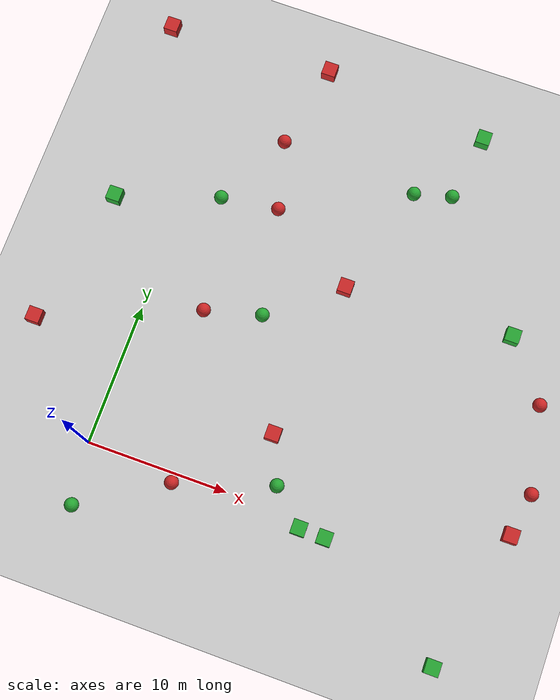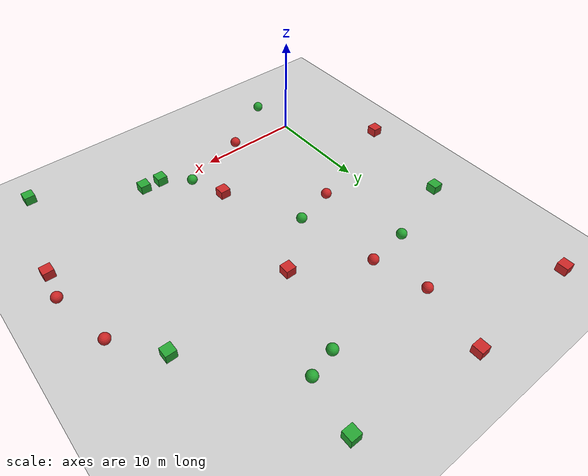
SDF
<sdf version="1.6">
 <world name="default">
  <light name="sun" type="directional">
   <pose>0 0 10 0 -0 0</pose>
   <diffuse>0.8 0.8 0.8 1</diffuse>
   <specular>0.1 0.1 0.1 1</specular>
   <attenuation>
    <range>1000</range>
    <constant>0.9</constant>
    <linear>0.01</linear>
    <quadratic>0.001</quadratic>
   </attenuation>
   <direction>-0.5 0.5 -1</direction>
  </light>
  <model name="ground_plane">
   <static>1</static>
   <link name="link">
    <collision name="collision">
     <geometry><plane><normal>0 0 1</normal><size>100 100</size></plane></geometry>
     <surface><friction><ode><mu>100</mu><mu2>50</mu2></ode></friction></surface>
    </collision>
    <visual name="visual">
     <cast_shadows>0</cast_shadows>
     <geometry><plane><normal>0 0 1</normal><size>100 100</size></plane></geometry>
     <material>
      <script><uri>file://media/materials/scripts/gazebo.material</uri><name>Gazebo/Grey</name></script>
     </material>
    </visual>
   </link>
  </model>
  <model name="unit_box_red_6">
   <pose>12.8664238449 16.1203100081 0.329741 0 -0 0</pose>
   <link name="link">
    <inertial>
     <mass>1</mass>
     <inertia>
      <ixx>0.166667</ixx>
      <ixy>0</ixy>
      <ixz>0</ixz>
      <iyy>0.166667</iyy>
      <iyz>0</iyz>
      <izz>0.166667</izz>
     </inertia>
    </inertial>
    <collision name="collision"><geometry><box><size>1 1 0.999999</size></box></geometry></collision>
    <visual name="visual">
     <geometry><box><size>1 1 0.999999</size></box></geometry>
     <material>
      <script><name>Gazebo/Red</name><uri>file://media/materials/scripts/gazebo.material</uri></script>
     </material>
    </visual>
   </link>
  </model>
  <model name="unit_box_red_5">
   <pose>28.7965384774 3.71239303723 0.329741 0 -0 0</pose>
   <link name="link">
    <inertial>
     <mass>1</mass>
     <inertia>
      <ixx>0.166667</ixx>
      <ixy>0</ixy>
      <ixz>0</ixz>
      <iyy>0.166667</iyy>
      <iyz>0</iyz>
      <izz>0.166667</izz>
     </inertia>
    </inertial>
    <collision name="collision"><geometry><box><size>1 1 0.999999</size></box></geometry></collision>
    <visual name="visual">
     <geometry><box><size>1 1 0.999999</size></box></geometry>
     <material>
      <script><name>Gazebo/Red</name><uri>file://media/materials/scripts/gazebo.material</uri></script>
     </material>
    </visual>
   </link>
  </model>
  <model name="unit_box_red_4">
   <pose>-6.70932779506 6.91007102334 0.329741 0 -0 0</pose>
   <link name="link">
    <inertial>
     <mass>1</mass>
     <inertia>
      <ixx>0.166667</ixx>
      <ixy>0</ixy>
      <ixz>0</ixz>
      <iyy>0.166667</iyy>
      <iyz>0</iyz>
      <izz>0.166667</izz>
     </inertia>
    </inertial>
    <collision name="collision"><geometry><box><size>1 1 0.999999</size></box></geometry></collision>
    <visual name="visual">
     <geometry><box><size>1 1 0.999999</size></box></geometry>
     <material>
      <script><name>Gazebo/Red</name><uri>file://media/materials/scripts/gazebo.material</uri></script>
     </material>
    </visual>
   </link>
  </model>
  <model name="unit_box_red_3">
   <pose>-5.55421412337 30.5239139961 0.329741 0 -0 0</pose>
   <link name="link">
    <inertial>
     <mass>1</mass>
     <inertia>
      <ixx>0.166667</ixx>
      <ixy>0</ixy>
      <ixz>0</ixz>
      <iyy>0.166667</iyy>
      <iyz>0</iyz>
      <izz>0.166667</izz>
     </inertia>
    </inertial>
    <collision name="collision"><geometry><box><size>1 1 0.999999</size></box></geometry></collision>
    <visual name="visual">
     <geometry><box><size>1 1 0.999999</size></box></geometry>
     <material>
      <script><name>Gazebo/Red</name><uri>file://media/materials/scripts/gazebo.material</uri></script>
     </material>
    </visual>
   </link>
  </model>
  <model name="unit_box_red_2">
   <pose>11.6356720455 4.7605083428 0.329741 0 -0 0</pose>
   <link name="link">
    <inertial>
     <mass>1</mass>
     <inertia>
      <ixx>0.166667</ixx>
      <ixy>0</ixy>
      <ixz>0</ixz>
      <iyy>0.166667</iyy>
      <iyz>0</iyz>
      <izz>0.166667</izz>
     </inertia>
    </inertial>
    <collision name="collision"><geometry><box><size>1 1 0.999999</size></box></geometry></collision>
    <visual name="visual">
     <geometry><box><size>1 1 0.999999</size></box></geometry>
     <material>
      <script><name>Gazebo/Red</name><uri>file://media/materials/scripts/gazebo.material</uri></script>
     </material>
    </visual>
   </link>
  </model>
  <model name="unit_box_red_1">
   <pose>6.46228861055 31.0765036563 0.329741 0 -0 0</pose>
   <link name="link">
    <inertial>
     <mass>1</mass>
     <inertia>
      <ixx>0.166667</ixx>
      <ixy>0</ixy>
      <ixz>0</ixz>
      <iyy>0.166667</iyy>
      <iyz>0</iyz>
      <izz>0.166667</izz>
     </inertia>
    </inertial>
    <collision name="collision"><geometry><box><size>1 1 0.999999</size></box></geometry></collision>
    <visual name="visual">
     <geometry><box><size>1 1 0.999999</size></box></geometry>
     <material>
      <script><name>Gazebo/Red</name><uri>file://media/materials/scripts/gazebo.material</uri></script>
     </material>
    </visual>
   </link>
  </model>
  <model name="unit_sphere_red_6">
   <pose>6.51791986289 19.8933931365 0.5 0 -0 0</pose>
   <link name="link">
    <inertial>
     <mass>1</mass>
     <inertia><ixx>0.1</ixx><ixy>0</ixy><ixz>0</ixz><iyy>0.1</iyy><iyz>0</iyz><izz>0.1</izz></inertia>
    </inertial>
    <collision name="collision"><geometry><sphere><radius>0.5</radius></sphere></geometry></collision>
    <visual name="visual">
     <geometry><sphere><radius>0.5</radius></sphere></geometry>
     <material>
      <script><name>Gazebo/Red</name><uri>file://media/materials/scripts/gazebo.material</uri></script>
     </material>
    </visual>
   </link>
  </model>
  <model name="unit_sphere_red_5">
   <pose>28.0282065107 12.7329346066 0.5 0 -0 0</pose>
   <link name="link">
    <inertial>
     <mass>1</mass>
     <inertia><ixx>0.1</ixx><ixy>0</ixy><ixz>0</ixz><iyy>0.1</iyy><iyz>0</iyz><izz>0.1</izz></inertia>
    </inertial>
    <collision name="collision"><geometry><sphere><radius>0.5</radius></sphere></geometry></collision>
    <visual name="visual">
     <geometry><sphere><radius>0.5</radius></sphere></geometry>
     <material>
      <script><name>Gazebo/Red</name><uri>file://media/materials/scripts/gazebo.material</uri></script>
     </material>
    </visual>
   </link>
  </model>
  <model name="unit_sphere_red_4">
   <pose>29.2761881445 6.76373887764 0.5 0 -0 0</pose>
   <link name="link">
    <inertial>
     <mass>1</mass>
     <inertia><ixx>0.1</ixx><ixy>0</ixy><ixz>0</ixz><iyy>0.1</iyy><iyz>0</iyz><izz>0.1</izz></inertia>
    </inertial>
    <collision name="collision"><geometry><sphere><radius>0.5</radius></sphere></geometry></collision>
    <visual name="visual">
     <geometry><sphere><radius>0.5</radius></sphere></geometry>
     <material>
      <script><name>Gazebo/Red</name><uri>file://media/materials/scripts/gazebo.material</uri></script>
     </material>
    </visual>
   </link>
  </model>
  <model name="unit_sphere_red_3">
   <pose>5.21995909168 24.8054277597 0.5 0 -0 0</pose>
   <link name="link">
    <inertial>
     <mass>1</mass>
     <inertia><ixx>0.1</ixx><ixy>0</ixy><ixz>0</ixz><iyy>0.1</iyy><iyz>0</iyz><izz>0.1</izz></inertia>
    </inertial>
    <collision name="collision"><geometry><sphere><radius>0.5</radius></sphere></geometry></collision>
    <visual name="visual">
     <geometry><sphere><radius>0.5</radius></sphere></geometry>
     <material>
      <script><name>Gazebo/Red</name><uri>file://media/materials/scripts/gazebo.material</uri></script>
     </material>
    </visual>
   </link>
  </model>
  <model name="unit_sphere_red_2">
   <pose>4.1510599671 11.2228200193 0.5 0 -0 0</pose>
   <link name="link">
    <inertial>
     <mass>1</mass>
     <inertia><ixx>0.1</ixx><ixy>0</ixy><ixz>0</ixz><iyy>0.1</iyy><iyz>0</iyz><izz>0.1</izz></inertia>
    </inertial>
    <collision name="collision"><geometry><sphere><radius>0.5</radius></sphere></geometry></collision>
    <visual name="visual">
     <geometry><sphere><radius>0.5</radius></sphere></geometry>
     <material>
      <script><name>Gazebo/Red</name><uri>file://media/materials/scripts/gazebo.material</uri></script>
     </material>
    </visual>
   </link>
  </model>
  <model name="unit_sphere_red_1">
   <pose>6.33400705968 -0.643173905062 0.5 0 -0 0</pose>
   <link name="link">
    <inertial>
     <mass>1</mass>
     <inertia><ixx>0.1</ixx><ixy>0</ixy><ixz>0</ixz><iyy>0.1</iyy><iyz>0</iyz><izz>0.1</izz></inertia>
    </inertial>
    <collision name="collision"><geometry><sphere><radius>0.5</radius></sphere></geometry></collision>
    <visual name="visual">
     <geometry><sphere><radius>0.5</radius></sphere></geometry>
     <material>
      <script><name>Gazebo/Red</name><uri>file://media/materials/scripts/gazebo.material</uri></script>
     </material>
    </visual>
   </link>
  </model>
  <model name="unit_box_green_6">
   <pose>24.8451305408 16.7121458003 0.329741 0 -0 0</pose>
   <link name="link">
    <inertial>
     <mass>1</mass>
     <inertia>
      <ixx>0.166667</ixx>
      <ixy>0</ixy>
      <ixz>0</ixz>
      <iyy>0.166667</iyy>
      <iyz>0</iyz>
      <izz>0.166667</izz>
     </inertia>
    </inertial>
    <collision name="collision"><geometry><box><size>1 1 0.999999</size></box></geometry></collision>
    <visual name="visual">
     <geometry><box><size>1 1 0.999999</size></box></geometry>
     <material>
      <script><name>Gazebo/Green</name><uri>file://media/materials/scripts/gazebo.material</uri></script>
     </material>
    </visual>
   </link>
  </model>
  <model name="unit_box_green_5">
   <pose>26.5206015818 -6.0697465877 0.329741 0 -0 0</pose>
   <link name="link">
    <inertial>
     <mass>1</mass>
     <inertia>
      <ixx>0.166667</ixx>
      <ixy>0</ixy>
      <ixz>0</ixz>
      <iyy>0.166667</iyy>
      <iyz>0</iyz>
      <izz>0.166667</izz>
     </inertia>
    </inertial>
    <collision name="collision"><geometry><box><size>1 1 0.999999</size></box></geometry></collision>
    <visual name="visual">
     <geometry><box><size>1 1 0.999999</size></box></geometry>
     <material>
      <script><name>Gazebo/Green</name><uri>file://media/materials/scripts/gazebo.material</uri></script>
     </material>
    </visual>
   </link>
  </model>
  <model name="unit_box_green_4">
   <pose>17.2046459199 -0.63098944078 0.329741 0 -0 0</pose>
   <link name="link">
    <inertial>
     <mass>1</mass>
     <inertia>
      <ixx>0.166667</ixx>
      <ixy>0</ixy>
      <ixz>0</ixz>
      <iyy>0.166667</iyy>
      <iyz>0</iyz>
      <izz>0.166667</izz>
     </inertia>
    </inertial>
    <collision name="collision"><geometry><box><size>1 1 0.999999</size></box></geometry></collision>
    <visual name="visual">
     <geometry><box><size>1 1 0.999999</size></box></geometry>
     <material>
      <script><name>Gazebo/Green</name><uri>file://media/materials/scripts/gazebo.material</uri></script>
     </material>
    </visual>
   </link>
  </model>
  <model name="unit_box_green_3">
   <pose>15.3939947966 -0.595108323381 0.329741 0 -0 0</pose>
   <link name="link">
    <inertial>
     <mass>1</mass>
     <inertia>
      <ixx>0.166667</ixx>
      <ixy>0</ixy>
      <ixz>0</ixz>
      <iyy>0.166667</iyy>
      <iyz>0</iyz>
      <izz>0.166667</izz>
     </inertia>
    </inertial>
    <collision name="collision"><geometry><box><size>1 1 0.999999</size></box></geometry></collision>
    <visual name="visual">
     <geometry><box><size>1 1 0.999999</size></box></geometry>
     <material>
      <script><name>Gazebo/Green</name><uri>file://media/materials/scripts/gazebo.material</uri></script>
     </material>
    </visual>
   </link>
  </model>
  <model name="unit_box_green_2">
   <pose>-4.73379498247 16.9613002526 0.329741 0 -0 0</pose>
   <link name="link">
    <inertial>
     <mass>1</mass>
     <inertia>
      <ixx>0.166667</ixx>
      <ixy>0</ixy>
      <ixz>0</ixz>
      <iyy>0.166667</iyy>
      <iyz>0</iyz>
      <izz>0.166667</izz>
     </inertia>
    </inertial>
    <collision name="collision"><geometry><box><size>1 1 0.999999</size></box></geometry></collision>
    <visual name="visual">
     <geometry><box><size>1 1 0.999999</size></box></geometry>
     <material>
      <script><name>Gazebo/Green</name><uri>file://media/materials/scripts/gazebo.material</uri></script>
     </material>
    </visual>
   </link>
  </model>
  <model name="unit_box_green_1">
   <pose>18.5533793835 29.8253063538 0.329741 0 -0 0</pose>
   <link name="link">
    <inertial>
     <mass>1</mass>
     <inertia>
      <ixx>0.166667</ixx>
      <ixy>0</ixy>
      <ixz>0</ixz>
      <iyy>0.166667</iyy>
      <iyz>0</iyz>
      <izz>0.166667</izz>
     </inertia>
    </inertial>
    <collision name="collision"><geometry><box><size>1 1 0.999999</size></box></geometry></collision>
    <visual name="visual">
     <geometry><box><size>1 1 0.999999</size></box></geometry>
     <material>
      <script><name>Gazebo/Green</name><uri>file://media/materials/scripts/gazebo.material</uri></script>
     </material>
    </visual>
   </link>
  </model>
  <model name="unit_sphere_green_6">
   <pose>17.8025686196 24.9227238691 0.5 0 -0 0</pose>
   <link name="link">
    <inertial>
     <mass>1</mass>
     <inertia><ixx>0.1</ixx><ixy>0</ixy><ixz>0</ixz><iyy>0.1</iyy><iyz>0</iyz><izz>0.1</izz></inertia>
    </inertial>
    <collision name="collision"><geometry><sphere><radius>0.5</radius></sphere></geometry></collision>
    <visual name="visual">
     <geometry><sphere><radius>0.5</radius></sphere></geometry>
     <material>
      <script><name>Gazebo/Green</name><uri>file://media/materials/scripts/gazebo.material</uri></script>
     </material>
    </visual>
   </link>
  </model>
  <model name="unit_sphere_green_5">
   <pose>0.589621354018 -4.29835462548 0.5 0 -0 0</pose>
   <link name="link">
    <inertial>
     <mass>1</mass>
     <inertia><ixx>0.1</ixx><ixy>0</ixy><ixz>0</ixz><iyy>0.1</iyy><iyz>0</iyz><izz>0.1</izz></inertia>
    </inertial>
    <collision name="collision"><geometry><sphere><radius>0.5</radius></sphere></geometry></collision>
    <visual name="visual">
     <geometry><sphere><radius>0.5</radius></sphere></geometry>
     <material>
      <script><name>Gazebo/Green</name><uri>file://media/materials/scripts/gazebo.material</uri></script>
     </material>
    </visual>
   </link>
  </model>
  <model name="unit_sphere_green_4">
   <pose>15.1751183431 24.2117444565 0.5 0 -0 0</pose>
   <link name="link">
    <inertial>
     <mass>1</mass>
     <inertia><ixx>0.1</ixx><ixy>0</ixy><ixz>0</ixz><iyy>0.1</iyy><iyz>0</iyz><izz>0.1</izz></inertia>
    </inertial>
    <collision name="collision"><geometry><sphere><radius>0.5</radius></sphere></geometry></collision>
    <visual name="visual">
     <geometry><sphere><radius>0.5</radius></sphere></geometry>
     <material>
      <script><name>Gazebo/Green</name><uri>file://media/materials/scripts/gazebo.material</uri></script>
     </material>
    </visual>
   </link>
  </model>
  <model name="unit_sphere_green_3">
   <pose>8.10038676958 12.2707825783 0.5 0 -0 0</pose>
   <link name="link">
    <inertial>
     <mass>1</mass>
     <inertia><ixx>0.1</ixx><ixy>0</ixy><ixz>0</ixz><iyy>0.1</iyy><iyz>0</iyz><izz>0.1</izz></inertia>
    </inertial>
    <collision name="collision"><geometry><sphere><radius>0.5</radius></sphere></geometry></collision>
    <visual name="visual">
     <geometry><sphere><radius>0.5</radius></sphere></geometry>
     <material>
      <script><name>Gazebo/Green</name><uri>file://media/materials/scripts/gazebo.material</uri></script>
     </material>
    </visual>
   </link>
  </model>
  <model name="unit_sphere_green_2">
   <pose>13.0620145313 1.54345461676 0.5 0 -0 0</pose>
   <link name="link">
    <inertial>
     <mass>1</mass>
     <inertia><ixx>0.1</ixx><ixy>0</ixy><ixz>0</ixz><iyy>0.1</iyy><iyz>0</iyz><izz>0.1</izz></inertia>
    </inertial>
    <collision name="collision"><geometry><sphere><radius>0.5</radius></sphere></geometry></collision>
    <visual name="visual">
     <geometry><sphere><radius>0.5</radius></sphere></geometry>
     <material>
      <script><name>Gazebo/Green</name><uri>file://media/materials/scripts/gazebo.material</uri></script>
     </material>
    </visual>
   </link>
  </model>
  <model name="unit_sphere_green_1">
   <pose>2.42248347847 19.3420888489 0.5 0 -0 0</pose>
   <link name="link">
    <inertial>
     <mass>1</mass>
     <inertia><ixx>0.1</ixx><ixy>0</ixy><ixz>0</ixz><iyy>0.1</iyy><iyz>0</iyz><izz>0.1</izz></inertia>
    </inertial>
    <collision name="collision"><geometry><sphere><radius>0.5</radius></sphere></geometry></collision>
    <visual name="visual">
     <geometry><sphere><radius>0.5</radius></sphere></geometry>
     <material>
      <script><name>Gazebo/Green</name><uri>file://media/materials/scripts/gazebo.material</uri></script>
     </material>
    </visual>
   </link>
  </model>
  <gravity>0 0 -9.8</gravity>
  <magnetic_field>6e-06 2.3e-05 -4.2e-05</magnetic_field>
  <atmosphere type="adiabatic"/>
  <physics default="0" name="default_physics" type="ode">
   <max_step_size>0.001</max_step_size>
   <real_time_factor>1</real_time_factor>
   <real_time_update_rate>1000</real_time_update_rate>
  </physics>
  <scene><ambient>0.4 0.4 0.4 1</ambient><background>0.7 0.7 0.7 1</background><shadows>1</shadows></scene>
  <spherical_coordinates>
   <surface_model>EARTH_WGS84</surface_model>
   <latitude_deg>0</latitude_deg>
   <longitude_deg>0</longitude_deg>
   <elevation>0</elevation>
   <heading_deg>0</heading_deg>
  </spherical_coordinates>
 </world>
</sdf>
